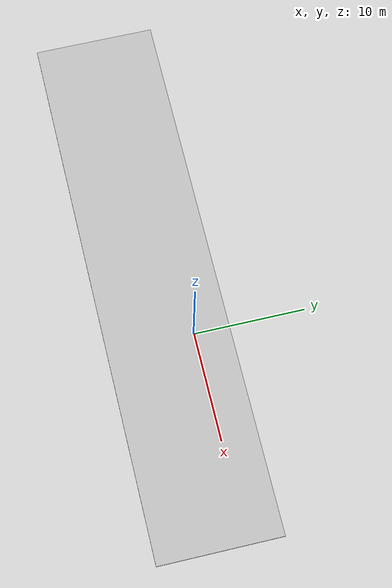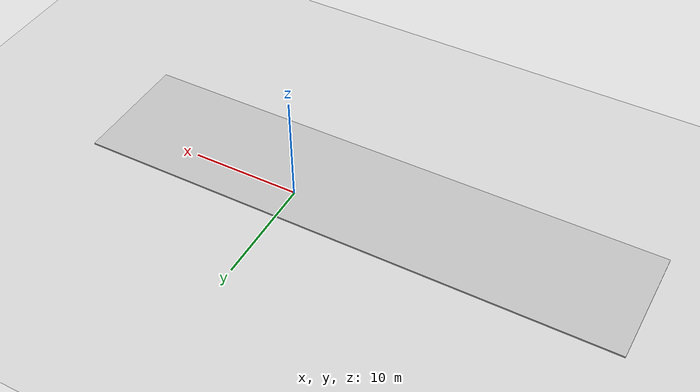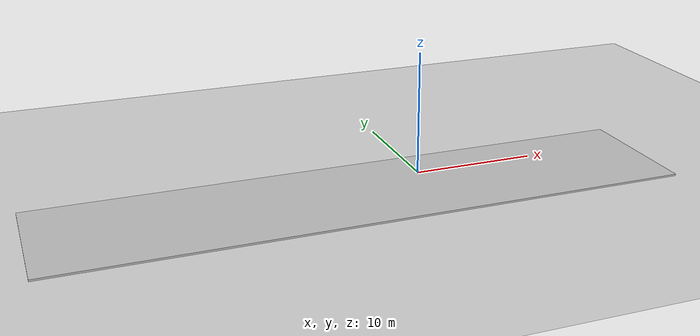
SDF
<sdf version="1.4">
 <world name="default">
  <light name="sun" type="directional">
   <pose>0 0 10 0 -0 0</pose>
   <diffuse>0.8 0.8 0.8 1</diffuse>
   <specular>0.2 0.2 0.2 1</specular>
   <attenuation>
    <range>1000</range>
    <constant>0.9</constant>
    <linear>0.01</linear>
    <quadratic>0.001</quadratic>
   </attenuation>
   <direction>0.5 0.1 -0.9</direction>
  </light>
  <model name="ground_plane">
   <static>1</static>
   <link name="link">
    <collision name="collision">
     <geometry><plane><normal>0 0 1</normal><size>100 100</size></plane></geometry>
     <surface><friction><ode><mu>100</mu><mu2>50</mu2></ode></friction></surface>
    </collision>
    <visual name="visual">
     <cast_shadows>0</cast_shadows>
     <geometry><plane><normal>0 0 1</normal><size>100 100</size></plane></geometry>
     <material>
      <script><uri>file://media/materials/scripts/gazebo.material</uri><name>Gazebo/Grey</name></script>
     </material>
    </visual>
    <velocity_decay><linear>0</linear><angular>0</angular></velocity_decay>
   </link>
  </model>
  <physics type="ode">
   <max_step_size>0.001</max_step_size>
   <real_time_factor>1</real_time_factor>
   <real_time_update_rate>1000</real_time_update_rate>
   <gravity>0 0 -9.8</gravity>
  </physics>
  <scene><ambient>0 0 0 1</ambient><shadows>1</shadows><grid>0</grid></scene>
  <spherical_coordinates>
   <surface_model>EARTH_WGS84</surface_model>
   <latitude_deg>0</latitude_deg>
   <longitude_deg>0</longitude_deg>
   <elevation>0</elevation>
   <heading_deg>0</heading_deg>
  </spherical_coordinates>
  <model name="Straight Road - 50m">
   <static>1</static>
   <link name="link">
    <inertial>
     <mass>1</mass>
     <inertia><ixx>1</ixx><iyy>1</iyy><izz>1</izz><ixy>0</ixy><ixz>0</ixz><iyz>0</iyz></inertia>
    </inertial>
    <collision name="collision">
     <geometry><mesh><uri>model://straight_road_50m/meshes/straight_road_50m.dae</uri></mesh></geometry>
    </collision>
    <visual name="visual">
     <geometry><mesh><uri>model://straight_road_50m/meshes/straight_road_50m.dae</uri></mesh></geometry>
    </visual>
    <velocity_decay><linear>0</linear><angular>0</angular></velocity_decay>
   </link>
   <pose>-5.91467 7.68114 0 0 -0 0</pose>
  </model>
 </world>
</sdf>
